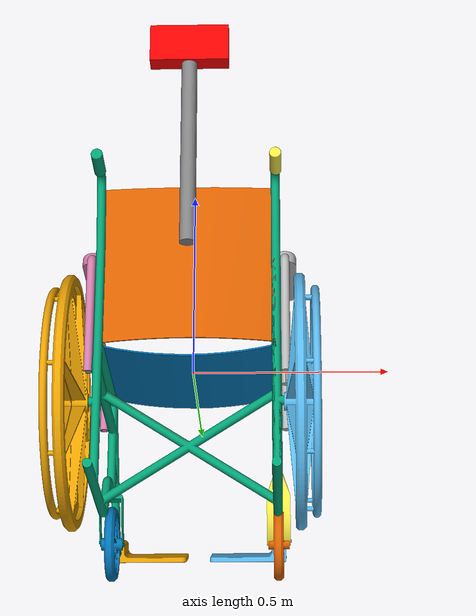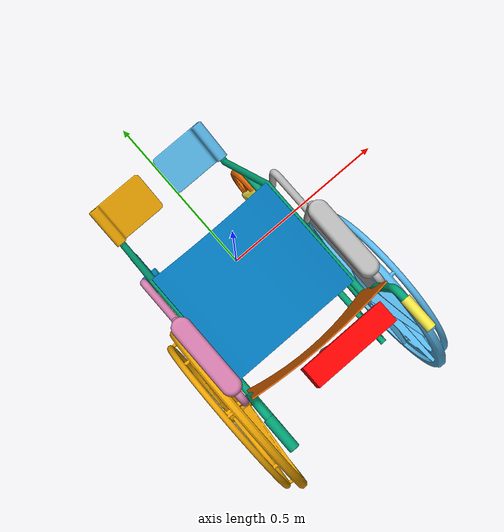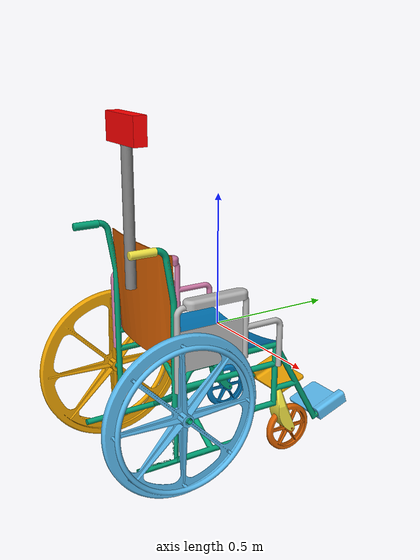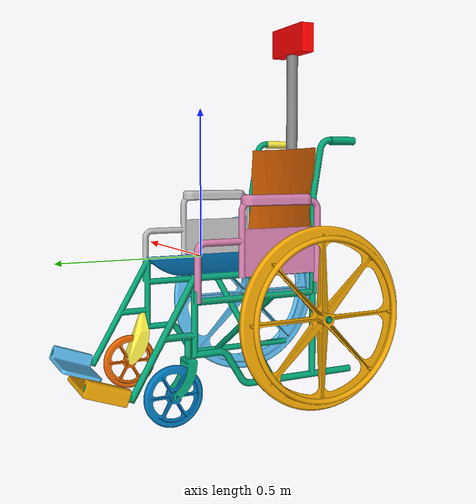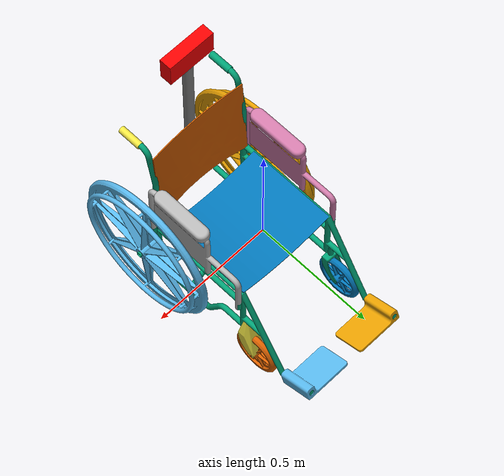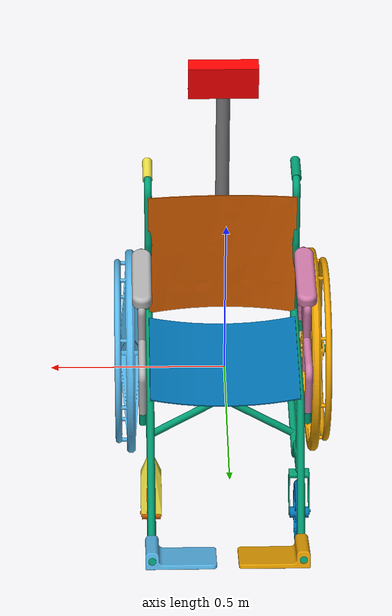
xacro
<?xml version="1.0" ?>
<robot name="wheelchair" xmlns:xacro="http://www.ros.org/wiki/xacro">
<!-- importing the other xacro files -->
    <xacro:include filename="$(find wheelchair_description)/urdf/chair.xacro" />
    <xacro:include filename="$(find wheelchair_description)/urdf/chair_sensors.xacro" />
    <xacro:include filename="$(find wheelchair_description)/urdf/gazebo.xacro"/>
    <xacro:include filename="$(find wheelchair_description)/urdf/ros2_control.xacro"/>
</robot>
<!-- this is the main xacro file that'll the published to the robot's state publisher
to help ros know the robot's params(joint, links and so on) -->

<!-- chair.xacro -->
<robot name="wheelchair" xmlns:xacro="http://www.ros.org/wiki/xacro">

    <!-- base: to get robot position and details relative to the world-->
    <link name="world_root"/>

    <link name="base_footprint">
     <inertial>
       <origin rpy="0.0 0.0 0.0" xyz="0.0 0.0 0.0"/>
       <mass value="0.001"/>
       <inertia ixx="0.00001" ixy="0.0" ixz="0.0" iyy="0.00001" iyz="0.0" izz="0.00001"/>
     </inertial>
    </link>

    <!-- added this when i was getting kdl errors, why? -->
    <joint name="world_root_to_footprint_joint" type="fixed">
        <parent link="world_root"/>
        <child link="base_footprint"/>
        <origin rpy="0.0 0.0 0.0" xyz="0.0 0.0 0.0"/>
    </joint>

    <!-- base_footprint to base_link -->
    <joint name="base_joint" type="fixed">
        <parent link="base_footprint"/>
        <child link="base_link"/>
        <origin xyz="0.0 0.0 0.0" rpy="0.0 0.0 0.0"/>
    </joint>

    <link name="base_link">
        <inertial>
            <origin xyz="0.0 0.0 0.0" rpy="0.0 0.0 0.0"/>
            <mass value="15.0"/>
            <inertia ixx="0.1" ixy="0.0" ixz="0.0" iyy="0.1" iyz="0.0" izz="0.1"/>
        </inertial>
        <visual>
            <origin xyz="0.0 0.0 0.0" rpy="0.0 0.0 0.0"/>
            <geometry>
                <mesh filename="package://wheelchair_description/meshes/visual/base_link_visual.obj"/>
            </geometry>
        </visual>
        <collision>
            <origin xyz="0.0 0.0 0.0" rpy="0.0 0.0 0.0"/>
            <geometry>
                <mesh filename="package://wheelchair_description/meshes/collision/base_link_collision.stl"/>
            </geometry>
        </collision>
    </link>

    <!-- The actual Wheelchair -->

    <!-- base to frame joint -->
    <joint name="frame_joint" type="fixed">
        <origin xyz="0.0 0.0 0.0" rpy="0.0 0.0 0.0"/>
        <parent link="base_link"/>
        <child link="frame_link"/>
    </joint>

    <link name="frame_link">
        <inertial>
            <origin xyz="0.0 0.0 0.0" rpy="0.0 0.0 0.0"/>
            <mass value="1.0"/>
            <inertia ixx="0.01" ixy="0.0" ixz="0.0" iyy="0.01" iyz="0.0" izz="0.01"/>
        </inertial>
        <visual>
            <origin xyz="0.0 0.0 0.0" rpy="0.0 0.0 0.0"/>
            <geometry>
                <mesh filename="package://wheelchair_description/meshes/visual/frame_visual.obj"/>
            </geometry>
        </visual>
        <collision>
            <origin xyz="0.0 0.0 0.0" rpy="0.0 0.0 0.0"/>
            <geometry>
                <mesh filename="package://wheelchair_description/meshes/collision/frame_collision.stl"/>
            </geometry>
        </collision>
    </link>

    <!-- frame_to_seat -->
    <joint name="seat_joint" type="fixed">
        <origin xyz="0.0 -0.070 -0.038" rpy="0.0 0.0 0.0"/>
        <parent link="frame_link"/>
        <child link="seat_link"/>
        <!-- prismatic adds: Prevents math crashes by setting motion bounds (in meters) -->
    </joint>

    <link name="seat_link">
        <inertial>
            <origin xyz="0.0 0.0 0.0" rpy="0.0 0.0 0.0"/>
            <mass value="1.0"/>
            <inertia ixx="0.01" ixy="0.0" ixz="0.0" iyy="0.01" iyz="0.0" izz="0.01"/>
        </inertial>
        <visual>
            <origin xyz="0.0 0.0 0.0" rpy="0.0 0.0 0.0"/>
            <geometry>
                <mesh filename="package://wheelchair_description/meshes/visual/seat_visual.obj"/>
            </geometry>
        </visual>
        <collision>
            <origin xyz="0.0 0.0 0.0" rpy="0.0 0.0 0.0"/>
            <geometry>
                <mesh filename="package://wheelchair_description/meshes/collision/seat_collision.stl"/>
            </geometry>
        </collision>
    </link>

    <!-- frame_to_back -->
    <joint name="back_joint" type="fixed">
        <origin xyz="0.0 -0.315 0.168" rpy="0.0 0.0 0.0"/>
        <parent link="frame_link"/>
        <child link="back_link"/>
        <!-- prismatic adds: Prevents math crashes by setting motion bounds (in meters) -->
    </joint>

    <link name="back_link">
        <inertial>
            <origin xyz="0.0 0.0 0.0" rpy="0.0 0.0 0.0"/>
            <mass value="1.0"/>
            <inertia ixx="0.01" ixy="0.0" ixz="0.0" iyy="0.01" iyz="0.0" izz="0.01"/>
        </inertial>
        <visual>
            <origin xyz="0.0 0.0 0.0" rpy="0.0 0.0 0.0"/>
            <geometry>
                <mesh filename="package://wheelchair_description/meshes/visual/back_visual.obj"/>
            </geometry>
        </visual>
        <collision>
            <origin xyz="0.0 0.0 0.0" rpy="0.0 0.0 0.0"/>
            <geometry>
                <mesh filename="package://wheelchair_description/meshes/collision/back_collision.stl"/>
            </geometry>
        </collision>
    </link>

    <!-- frame_to_left-panel -->
    <joint name="left_panel_joint" type="fixed">
        <origin xyz="-0.238 -0.100 0.044" rpy="0.0 0.0 0.0"/>
        <parent link="frame_link"/>
        <child link="left_panel_link"/>
        <!-- prismatic adds: Prevents math crashes by setting motion bounds (in meters) -->
    </joint>

    <link name="left_panel_link">
        <inertial>
            <origin xyz="0.0 0.0 0.0" rpy="0.0 0.0 0.0"/>
            <mass value="1.0"/>
            <inertia ixx="0.01" ixy="0.0" ixz="0.0" iyy="0.01" iyz="0.0" izz="0.01"/>
        </inertial>
        <visual>
            <origin xyz="0.0 0.0 0.0" rpy="0.0 0.0 0.0"/>
            <geometry>
                <mesh filename="package://wheelchair_description/meshes/visual/left_panel_visual.obj"/>
            </geometry>
        </visual>
        <collision>
            <origin xyz="0.0 0.0 0.0" rpy="0.0 0.0 0.0"/>
            <geometry>
                <mesh filename="package://wheelchair_description/meshes/collision/left_panel_collision.stl"/>
            </geometry>
        </collision>
    </link>

    <!-- frame_to_right-panel -->
    <joint name="right_panel_joint" type="fixed">
        <origin xyz="0.238 -0.100 0.043" rpy="0.0 0.0 0.0"/>
        <parent link="frame_link"/>
        <child link="right_panel_link"/>
        <!-- prismatic adds: Prevents math crashes by setting motion bounds (in meters) -->
    </joint>

    <link name="right_panel_link">
        <inertial>
            <origin xyz="0.0 0.0 0.0" rpy="0.0 0.0 0.0"/>
            <mass value="1.0"/>
            <inertia ixx="0.01" ixy="0.0" ixz="0.0" iyy="0.01" iyz="0.0" izz="0.01"/>
        </inertial>
        <visual>
            <origin xyz="0.0 0.0 0.0" rpy="0.0 0.0 0.0"/>
            <geometry>
                <mesh filename="package://wheelchair_description/meshes/visual/right_panel_visual.obj"/>
            </geometry>
        </visual>
        <collision>
            <origin xyz="0.0 0.0 0.0" rpy="0.0 0.0 0.0"/>
            <geometry>
                <mesh filename="package://wheelchair_description/meshes/collision/right_panel_collision.stl"/>
            </geometry>
        </collision>
    </link>

    <!-- frame_to_leftbackwheel -->
    <joint name="leftbackwheel_joint" type="continuous">
        <origin xyz="-0.276 -0.317 -0.194" rpy="0.0 0.0 0.0"/>
        <parent link="frame_link"/>
        <child link="leftbackwheel_link"/>
        <!-- prismatic adds: Prevents math crashes by setting motion bounds (in meters) -->
        <axis xyz="1 0 0"/>
        <dynamics damping="0.1" friction="0.1"/>
    </joint>

    <link name="leftbackwheel_link">
        <inertial>
            <origin xyz="0.0 0.0 0.0" rpy="0.0 0.0 0.0"/>
            <mass value="1.0"/>
            <inertia ixx="0.01" ixy="0.0" ixz="0.0" iyy="0.01" iyz="0.0" izz="0.01"/>
        </inertial>
        <visual>
            <origin xyz="0.0 0.0 0.0" rpy="0.0 0.0 0.0"/>
            <geometry>
                <mesh filename="package://wheelchair_description/meshes/visual/leftbackwheel_visual.obj"/>
            </geometry>
        </visual>
        <collision>
            <origin xyz="0.0 0.0 0.0" rpy="0.0 0.0 0.0"/>
            <geometry>
                <mesh filename="package://wheelchair_description/meshes/collision/leftbackwheel_collision.stl"/>
            </geometry>
        </collision>
    </link>

    <!-- frame_to_rightbackwheel -->
    <joint name="rightbackwheel_joint" type="continuous">
        <origin xyz="0.276 -0.317 -0.194" rpy="0.0 0.0 0.0"/>
        <parent link="frame_link"/>
        <child link="rightbackwheel_link"/>
        <!-- prismatic adds: Prevents math crashes by setting motion bounds (in meters) -->
        <axis xyz="1 0 0"/>
        <dynamics damping="0.1" friction="0.1"/>
    </joint>

    <link name="rightbackwheel_link">
        <inertial>
            <origin xyz="0.0 0.0 0.0" rpy="0.0 0.0 0.0"/>
            <mass value="1.0"/>
            <inertia ixx="0.01" ixy="0.0" ixz="0.0" iyy="0.01" iyz="0.0" izz="0.01"/>
        </inertial>
        <visual>
            <origin xyz="0.0 0.0 0.0" rpy="0.0 0.0 0.0"/>
            <geometry>
                <mesh filename="package://wheelchair_description/meshes/visual/rightbackwheel_visual.obj"/>
            </geometry>
        </visual>
        <collision>
            <origin xyz="0.0 0.0 0.0" rpy="0.0 0.0 0.0"/>
            <geometry>
                <mesh filename="package://wheelchair_description/meshes/collision/rightbackwheel_collision.stl"/>
            </geometry>
        </collision>
    </link>

    <!-- frame_to_left_caster -->
    <joint name="left_caster_joint" type="continuous">
        <origin xyz="-0.216 0.161 -0.314" rpy="0.0 0.0 0.0"/>
        <parent link="frame_link"/>
        <child link="left_caster_link"/>
        <!-- prismatic adds: Prevents math crashes by setting motion bounds (in meters) -->
        <axis xyz="0 0 1"/>
        <dynamics damping="0.1" friction="0.1"/>
    </joint>

    <!-- casters only had stl format for whatever reason -->

    <link name="left_caster_link">
        <inertial>
            <origin xyz="0.0 0.0 0.0" rpy="0.0 0.0 0.0"/>
            <mass value="1.0"/>
            <inertia ixx="0.01" ixy="0.0" ixz="0.0" iyy="0.01" iyz="0.0" izz="0.01"/>
        </inertial>
        <visual>
            <origin xyz="0.0 0.0 0.0" rpy="0.0 0.0 0.0"/>
            <geometry>
                <mesh filename="package://wheelchair_description/meshes/visual/left_caster_visual.stl"/>
            </geometry>
        </visual>
        <collision>
            <origin xyz="0.0 0.0 0.0" rpy="0.0 0.0 0.0"/>
            <geometry>
                <mesh filename="package://wheelchair_description/meshes/collision/left_caster_collision.stl"/>
            </geometry>
        </collision>
    </link>

    <!-- frame_to_rightcaster -->
    <joint name="right_caster_joint" type="continuous">
        <origin xyz="0.216 0.161 -0.314" rpy="0.0 0.0 0.0"/>
        <parent link="frame_link"/>
        <child link="right_caster_link"/>
        <!-- prismatic adds: Prevents math crashes by setting motion bounds (in meters) -->
        <axis xyz="0 0 1"/>
        <dynamics damping="0.1" friction="0.1"/>
    </joint>

    <link name="right_caster_link">
        <inertial>
            <origin xyz="0.0 0.0 0.0" rpy="0.0 0.0 0.0"/>
            <mass value="1.0"/>
            <inertia ixx="0.01" ixy="0.0" ixz="0.0" iyy="0.01" iyz="0.0" izz="0.01"/>
        </inertial>
        <visual>
            <origin xyz="0.0 0.0 0.0" rpy="0.0 0.0 0.0"/>
            <geometry>
                <mesh filename="package://wheelchair_description/meshes/visual/right_caster_visual.stl"/>
            </geometry>
        </visual>
        <collision>
            <origin xyz="0.0 0.0 0.0" rpy="0.0 0.0 0.0"/>
            <geometry>
                <mesh filename="package://wheelchair_description/meshes/collision/right_caster_collision.stl"/>
            </geometry>
        </collision>
    </link>

    <!-- left_caster_to_leftfrontwheel -->
    <joint name="leftfrontwheel_joint" type="continuous">
        <origin xyz="0.0 0.027 -0.086" rpy="0.0 0.0 0.0"/>
        <parent link="left_caster_link"/>
        <child link="leftfrontwheel_link"/>
        <!-- prismatic adds: Prevents math crashes by setting motion bounds (in meters) -->
        <axis xyz="1 0 0"/>
        <dynamics damping="0.1" friction="0.1"/>
    </joint>

    <link name="leftfrontwheel_link">
        <inertial>
            <origin xyz="0.0 0.0 0.0" rpy="0.0 0.0 0.0"/>
            <mass value="1.0"/>
            <inertia ixx="0.01" ixy="0.0" ixz="0.0" iyy="0.01" iyz="0.0" izz="0.01"/>
        </inertial>
        <visual>
            <origin xyz="0.0 0.0 0.0" rpy="0.0 0.0 0.0"/>
            <geometry>
                <mesh filename="package://wheelchair_description/meshes/visual/leftfrontwheel_visual.obj"/>
            </geometry>
        </visual>
        <collision>
            <origin xyz="0.0 0.0 0.0" rpy="0.0 0.0 0.0"/>
            <geometry>
                <mesh filename="package://wheelchair_description/meshes/collision/leftfrontwheel_collision.stl"/>
            </geometry>
        </collision>
    </link>

    <!-- right_caster_to_rightfrontwheel -->
    <joint name="rightfrontwheel_joint" type="continuous">
        <origin xyz="0.0 0.027 -0.086" rpy="0.0 0.0 0.0"/>
        <parent link="right_caster_link"/>
        <child link="rightfrontwheel_link"/>
        <!-- prismatic adds: Prevents math crashes by setting motion bounds (in meters) -->
        <axis xyz="1 0 0"/>
        <dynamics damping="0.1" friction="0.1"/>
    </joint>

    <link name="rightfrontwheel_link">
        <inertial>
            <origin xyz="0.0 0.0 0.0" rpy="0.0 0.0 0.0"/>
            <mass value="1.0"/>
            <inertia ixx="0.01" ixy="0.0" ixz="0.0" iyy="0.01" iyz="0.0" izz="0.01"/>
        </inertial>
        <visual>
            <origin xyz="0.0 0.0 0.0" rpy="0.0 0.0 0.0"/>
            <geometry>
                <mesh filename="package://wheelchair_description/meshes/visual/rightfrontwheel_visual.obj"/>
            </geometry>
        </visual>
        <collision>
            <origin xyz="0.0 0.0 0.0" rpy="0.0 0.0 0.0"/>
            <geometry>
                <mesh filename="package://wheelchair_description/meshes/collision/rightfrontwheel_collision.stl"/>
            </geometry>
        </collision>
    </link>

    <!-- frame to left_armrest -->
    <joint name="left_armrest_joint" type="fixed">
        <origin xyz="-0.237 -0.162 0.200" rpy="0.0 0.0 0.0"/>
        <parent link="frame_link"/>
        <child link="left_armrest_link"/>
        <!-- prismatic adds: Prevents math crashes by setting motion bounds (in meters) -->
    </joint>

    <link name="left_armrest_link">
        <inertial>
            <origin xyz="0.0 0.0 0.0" rpy="0.0 0.0 0.0"/>
            <mass value="1.0"/>
            <inertia ixx="0.01" ixy="0.0" ixz="0.0" iyy="0.01" iyz="0.0" izz="0.01"/>
        </inertial>
        <visual>
            <origin xyz="0.0 0.0 0.0" rpy="0.0 0.0 0.0"/>
            <geometry>
                <mesh filename="package://wheelchair_description/meshes/visual/left_armrest_visual.obj"/>
            </geometry>
        </visual>
        <collision>
            <origin xyz="0.0 0.0 0.0" rpy="0.0 0.0 0.0"/>
            <geometry>
                <mesh filename="package://wheelchair_description/meshes/collision/left_armrest_collision.stl"/>
            </geometry>
        </collision>
    </link>

    <!-- frame to right_armrest -->
    <joint name="right_armrest_joint" type="fixed">
        <origin xyz="0.237 -0.162 0.200" rpy="0.0 0.0 0.0"/>
        <parent link="frame_link"/>
        <child link="right_armrest_link"/>
        <!-- prismatic adds: Prevents math crashes by setting motion bounds (in meters) -->
    </joint>

    <link name="right_armrest_link">
        <inertial>
            <origin xyz="0.0 0.0 0.0" rpy="0.0 0.0 0.0"/>
            <mass value="1.0"/>
            <inertia ixx="0.01" ixy="0.0" ixz="0.0" iyy="0.01" iyz="0.0" izz="0.01"/>
        </inertial>
        <visual>
            <origin xyz="0.0 0.0 0.0" rpy="0.0 0.0 0.0"/>
            <geometry>
                <mesh filename="package://wheelchair_description/meshes/visual/right_armrest_visual.obj"/>
            </geometry>
        </visual>
        <collision>
            <origin xyz="0.0 0.0 0.0" rpy="0.0 0.0 0.0"/>
            <geometry>
                <mesh filename="package://wheelchair_description/meshes/collision/right_armrest_collision.stl"/>
            </geometry>
        </collision>
    </link>

    <!-- frame to left_flap -->
    <joint name="left_flap_joint" type="fixed">
        <origin xyz="-0.133 0.400 -0.360" rpy="0.0 0.0 0.0"/>
        <parent link="frame_link"/>
        <child link="left_flap_link"/>
        <!-- prismatic adds: Prevents math crashes by setting motion bounds (in meters) -->
    </joint>

    <link name="left_flap_link">
        <inertial>
            <origin xyz="0.0 0.0 0.0" rpy="0.0 0.0 0.0"/>
            <mass value="1.0"/>
            <inertia ixx="0.01" ixy="0.0" ixz="0.0" iyy="0.01" iyz="0.0" izz="0.01"/>
        </inertial>
        <visual>
            <origin xyz="0.0 0.0 0.0" rpy="0.0 0.0 0.0"/>
            <geometry>
                <mesh filename="package://wheelchair_description/meshes/visual/left_flap_visual.obj"/>
            </geometry>
        </visual>
        <collision>
            <origin xyz="0.0 0.0 0.0" rpy="0.0 0.0 0.0"/>
            <geometry>
                <mesh filename="package://wheelchair_description/meshes/collision/left_flap_collision.stl"/>
            </geometry>
        </collision>
    </link>

    <!-- frame to right_flap -->
    <joint name="right_flap_joint" type="fixed">
        <origin xyz="0.133 0.400 -0.360" rpy="0.0 0.0 0.0"/>
        <parent link="frame_link"/>
        <child link="right_flap_link"/>
        <!-- prismatic adds: Prevents math crashes by setting motion bounds (in meters) -->
    </joint>

    <link name="right_flap_link">
        <inertial>
            <origin xyz="0.0 0.0 0.0" rpy="0.0 0.0 0.0"/>
            <mass value="1.0"/>
            <inertia ixx="0.01" ixy="0.0" ixz="0.0" iyy="0.01" iyz="0.0" izz="0.01"/>
        </inertial>
        <visual>
            <origin xyz="0.0 0.0 0.0" rpy="0.0 0.0 0.0"/>
            <geometry>
                <mesh filename="package://wheelchair_description/meshes/visual/right_flap_visual.obj"/>
            </geometry>
        </visual>
        <collision>
            <origin xyz="0.0 0.0 0.0" rpy="0.0 0.0 0.0"/>
            <geometry>
                <mesh filename="package://wheelchair_description/meshes/collision/right_flap_collision.stl"/>
            </geometry>
        </collision>
    </link>

    <!-- frame to left_handle -->
    <joint name="left_handle_joint" type="fixed">
        <origin xyz="-0.217 -0.427 0.392" rpy="0.0 0.0 0.0"/>
        <parent link="frame_link"/>
        <child link="left_handle_link"/>
        <!-- prismatic adds: Prevents math crashes by setting motion bounds (in meters) -->
    </joint>

    <link name="left_handle_link">
        <inertial>
            <origin xyz="0.0 0.0 0.0" rpy="0.0 0.0 0.0"/>
            <mass value="1.0"/>
            <inertia ixx="0.01" ixy="0.0" ixz="0.0" iyy="0.01" iyz="0.0" izz="0.01"/>
        </inertial>
        <visual>
            <origin xyz="0.0 0.0 0.0" rpy="0.0 0.0 0.0"/>
            <geometry>
                <mesh filename="package://wheelchair_description/meshes/visual/left_handle_visual.stl"/>
            </geometry>
        </visual>
        <collision>
            <origin xyz="0.0 0.0 0.0" rpy="0.0 0.0 0.0"/>
            <geometry>
                <mesh filename="package://wheelchair_description/meshes/collision/left_handle_collision.stl"/>
            </geometry>
        </collision>
    </link>

    <!-- frame to right_handle -->
    <joint name="right_handle_joint" type="fixed">
        <origin xyz="0.217 -0.427 0.392" rpy="0.0 0.0 0.0"/>
        <parent link="frame_link"/>
        <child link="right_handle_link"/>
        <!-- prismatic adds: Prevents math crashes by setting motion bounds (in meters) -->
    </joint>

    <link name="right_handle_link">
        <inertial>
            <origin xyz="0.0 0.0 0.0" rpy="0.0 0.0 0.0"/>
            <mass value="1.0"/>
            <inertia ixx="0.01" ixy="0.0" ixz="0.0" iyy="0.01" iyz="0.0" izz="0.01"/>
        </inertial>
        <visual>
            <origin xyz="0.0 0.0 0.0" rpy="0.0 0.0 0.0"/>
            <geometry>
                <mesh filename="package://wheelchair_description/meshes/visual/right_handle_visual.stl"/>
            </geometry>
        </visual>
        <collision>
            <origin xyz="0.0 0.0 0.0" rpy="0.0 0.0 0.0"/>
            <geometry>
                <mesh filename="package://wheelchair_description/meshes/collision/right_handle_collision.stl"/>
            </geometry>
        </collision>
    </link>

    <!-- frame to left_pin -->
    <joint name="left_pin_joint" type="fixed">
        <origin xyz="-0.003 0.027 -0.081" rpy="0.0 0.0 0.0"/>
        <parent link="left_caster_link"/>
        <child link="left_pin_link"/>
        <!-- prismatic adds: Prevents math crashes by setting motion bounds (in meters) -->
    </joint>

    <link name="left_pin_link">
        <inertial>
            <origin xyz="0.0 0.0 0.0" rpy="0.0 0.0 0.0"/>
            <mass value="1.0"/>
            <inertia ixx="0.01" ixy="0.0" ixz="0.0" iyy="0.01" iyz="0.0" izz="0.01"/>
        </inertial>
        <visual>
            <origin xyz="0.0 0.0 0.0" rpy="0.0 0.0 0.0"/>
            <geometry>
                <mesh filename="package://wheelchair_description/meshes/visual/left_pin_visual.obj"/>
            </geometry>
        </visual>
        <collision>
            <origin xyz="0.0 0.0 0.0" rpy="0.0 0.0 0.0"/>
            <geometry>
                <mesh filename="package://wheelchair_description/meshes/collision/left_pin_collision.stl"/>
            </geometry>
        </collision>
    </link>

    <!-- frame to right_pin -->
    <joint name="right_pin_joint" type="fixed">
        <origin xyz="0.003 0.027 -0.081" rpy="0.0 0.0 0.0"/>
        <parent link="right_caster_link"/>
        <child link="right_pin_link"/>
        <!-- prismatic adds: Prevents math crashes by setting motion bounds (in meters) -->
    </joint>

    <link name="right_pin_link">
        <inertial>
            <origin xyz="0.0 0.0 0.0" rpy="0.0 0.0 0.0"/>
            <mass value="1.0"/>
            <inertia ixx="0.01" ixy="0.0" ixz="0.0" iyy="0.01" iyz="0.0" izz="0.01"/>
        </inertial>
        <visual>
            <origin xyz="0.0 0.0 0.0" rpy="0.0 0.0 0.0"/>
            <geometry>
                <mesh filename="package://wheelchair_description/meshes/visual/right_pin_visual.obj"/>
            </geometry>
        </visual>
        <collision>
            <origin xyz="0.0 0.0 0.0" rpy="0.0 0.0 0.0"/>
            <geometry>
                <mesh filename="package://wheelchair_description/meshes/collision/right_pin_collision.stl"/>
            </geometry>
        </collision>
    </link>

<!-- blue=up/down(z); green=front/back(y); red=left/right(x);  -->
    <!-- for ros2_control -->
    <ros2_control name="RobotSystem" type="system">
      <hardware>
        <plugin>gz_ros2_control/GazeboSimSystem</plugin>
      </hardware>

      <joint name="leftbackwheel_joint">
        <command_interface name="velocity">
          <param name="min">-4.5</param>
          <param name="max">4.5</param>
        </command_interface>
        <state_interface name="position"/>
        <state_interface name="velocity"/>
      </joint>

      <joint name="rightbackwheel_joint">
        <command_interface name="velocity">
          <param name="min">-4.5</param>
          <param name="max">4.5</param>
        </command_interface>
        <state_interface name="position"/>
        <state_interface name="velocity"/>
      </joint>
    </ros2_control>

    <gazebo>
      <plugin filename="gz_ros2_control-system" name="gz_ros2_control::GazeboSimROS2ControlPlugin">
        <parameters>$(find wheelchair_controller)/config/wheelchair_controllers.yaml</parameters>
      </plugin>
      <plugin filename="ignition-gazebo-sensors-system" name="ignition::gazebo::systems::Sensors">
        <render_engine>ogre2</render_engine>
      </plugin>
    </gazebo>
</robot>

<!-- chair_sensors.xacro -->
<robot name="wheelchair" xmlns:xacro="http://www.ros.org/wiki/xacro">

  <link name="lidar_pole_link">
    <inertial>
      <origin xyz="0.0 0.0 0.25" rpy="0.0 0.0 0.0"/>
      <mass value="0.5"/> <inertia ixx="0.01" ixy="0.0" ixz="0.0" iyy="0.01" iyz="0.0" izz="0.001"/>
    </inertial>
    <visual>
      <origin xyz="0.0 0.0 0.25" rpy="0.0 0.0 0.0"/>
      <geometry>
        <cylinder radius="0.02" length="0.5"/>
      </geometry>
      <material name="grey">
        <color rgba="0.5 0.5 0.5 1.0"/>
      </material>
    </visual>
    <collision>
      <origin xyz="0.0 0.0 0.25" rpy="0.0 0.0 0.0"/>
      <geometry>
        <cylinder radius="0.02" length="0.5"/>
      </geometry>
    </collision>
  </link>

  <joint name="lidar_pole_joint" type="fixed">
    <origin xyz="0.0 -0.362 0.205" rpy="0.0 0.0 0.0"/>
    <parent link="frame_link"/>
    <child link="lidar_pole_link"/>
    <!-- prismatic add-ins -->
  </joint>

  <link name="laser_link">
    <inertial>
      <origin xyz="0.0 0.0 0.0" rpy="0.0 0.0 0.0"/>
      <mass value="0.3"/>
      <inertia ixx="0.0002" ixy="0.0" ixz="0.0" iyy="0.0004" iyz="0.0" izz="0.0005"/>
    </inertial>
    <visual>
      <origin xyz="0.0 0.0 0.0" rpy="0.0 0.0 0.0"/>
      <geometry>
        <box size="0.2 0.05 0.1"/>
      </geometry>
      <material name="red">
        <color rgba="1.0 0.0 0.0 1.0"/>
      </material>
    </visual>
    <collision>
      <origin xyz="0.0 0.0 0.0" rpy="0.0 0.0 0.0"/>
      <geometry>
        <box size="0.05 0.2 0.1"/>
      </geometry>
    </collision>
  </link>

  <joint name="laser_joint" type="fixed">
    <origin xyz="0.0 0.0 0.549" rpy="0.0 0.0 0.0"/>
    <parent link="lidar_pole_link"/>
    <child link="laser_link"/>
    <!-- prismatic add-ins -->
  </joint>

  <gazebo reference="laser_link">
    <sensor type="gpu_lidar" name="generic_lidar">
      <update_rate>10.0</update_rate> <topic>scan</topic>             <gz_frame_id>laser_link</gz_frame_id>
      <lidar>
        <scan>
          <horizontal>
            <samples>640</samples>
            <resolution>1</resolution>
            <min_angle>-3.141592</min_angle> <max_angle>3.141592</max_angle>
          </horizontal>
        </scan>
        <range>
          <min>0.08</min>  <max>12.0</max>  <resolution>0.01</resolution>
        </range>
      </lidar>
      <always_on>1</always_on>
      <visualize>true</visualize> </sensor>
  </gazebo>

</robot>
